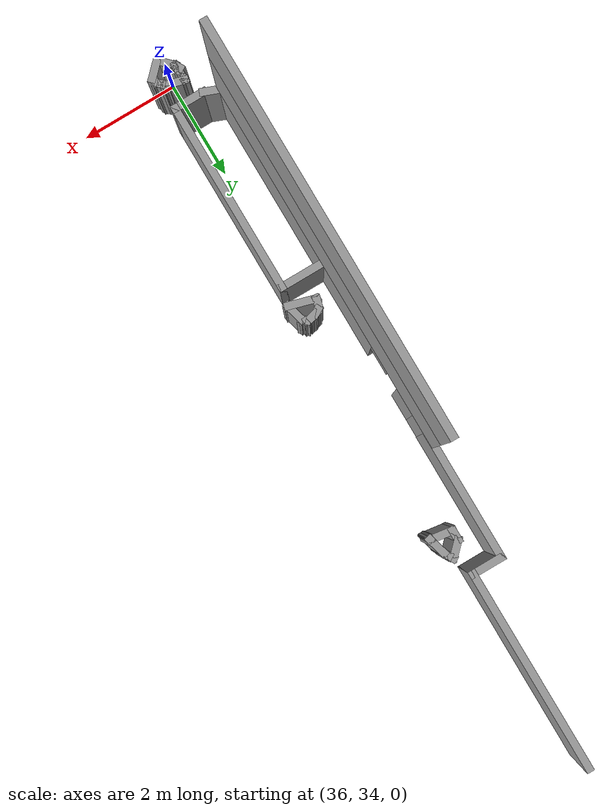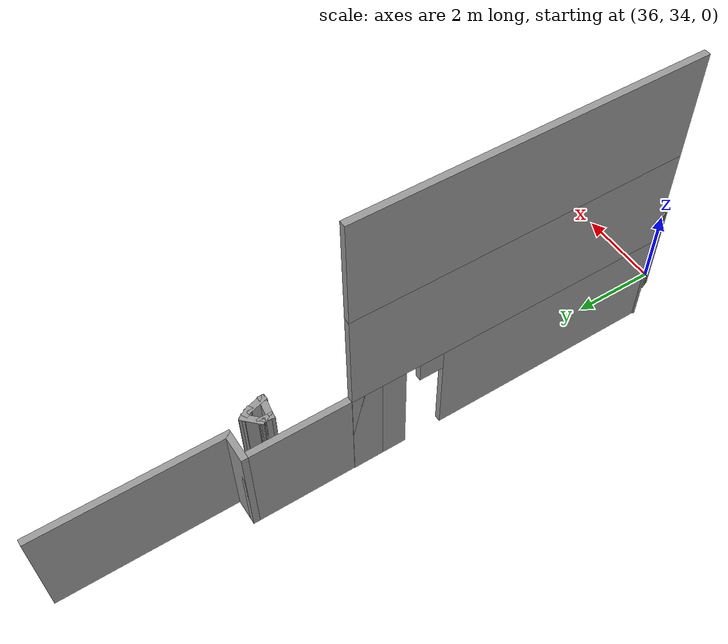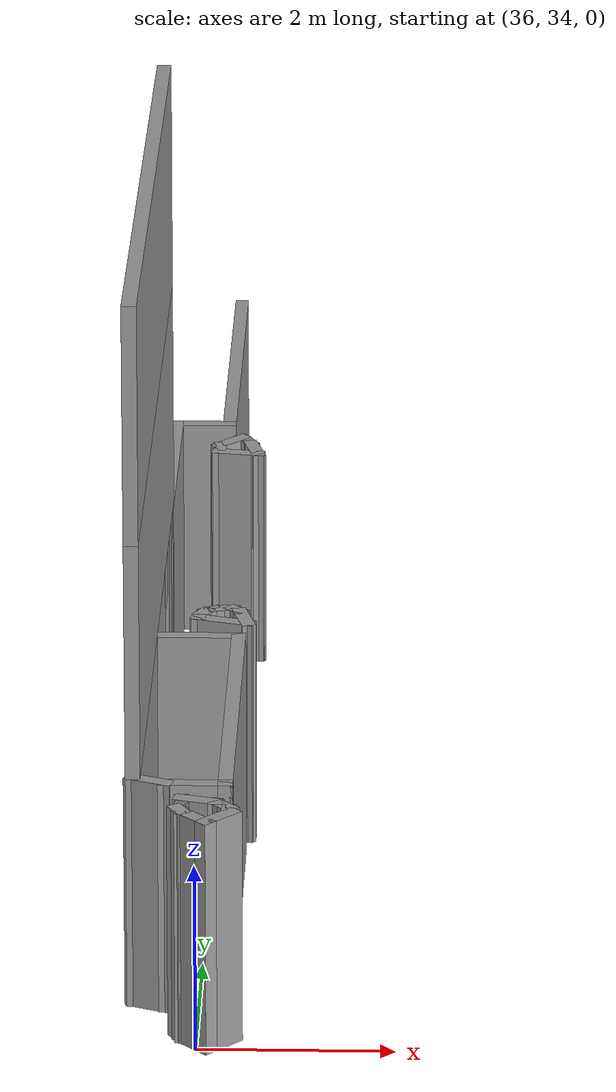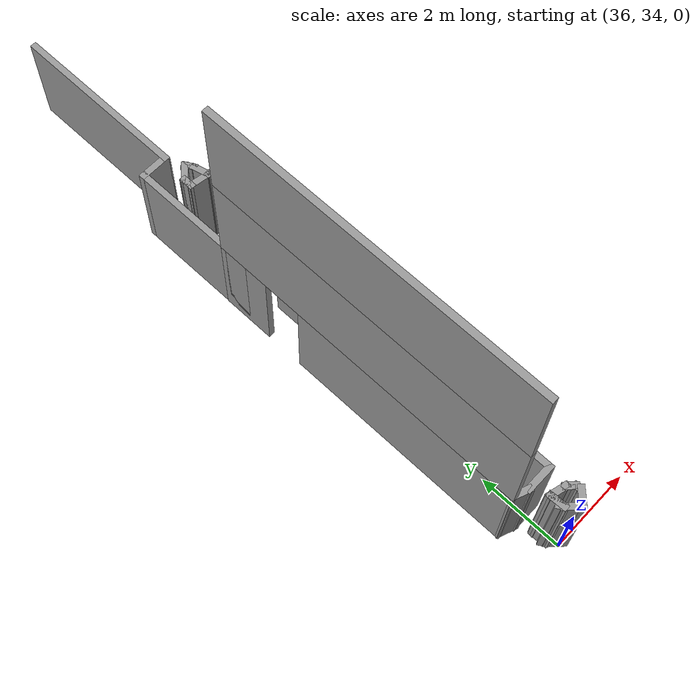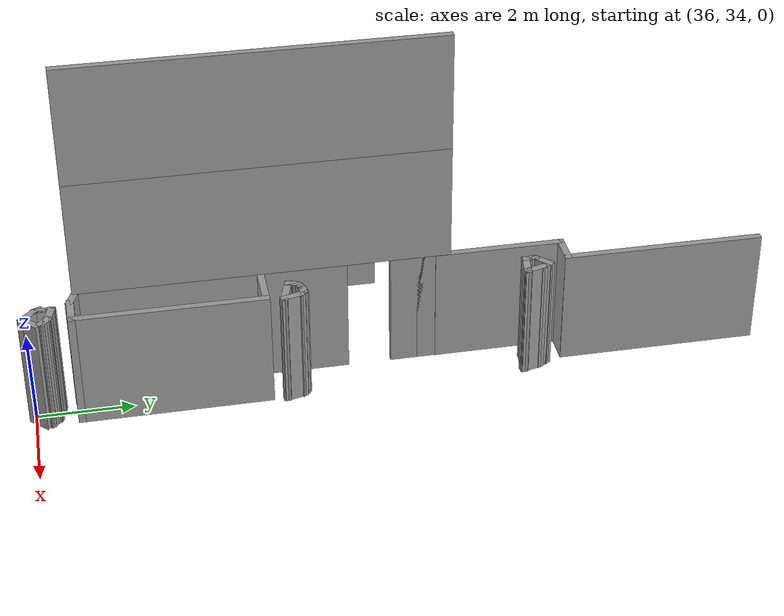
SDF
<sdf version="1.7">
 <model name="mapagazebo">
  <pose>-4.67869 9.01252 0 0 -0 0</pose>
  <link name="Wall_1241">
   <collision name="Wall_1241_Collision">
    <geometry><box><size>7.75 0.15 2.5</size></box></geometry>
    <pose>0 0 1.25 0 -0 0</pose>
   </collision>
   <visual name="Wall_1241_Visual">
    <pose>0 0 1.25 0 -0 0</pose>
    <geometry><box><size>7.75 0.15 2.5</size></box></geometry>
    <material>
     <script><uri>file://media/materials/scripts/gazebo.material</uri><name>Gazebo/Grey</name></script>
     <ambient>1 1 1 1</ambient>
    </material>
    <meta><layer>1</layer></meta>
   </visual>
   <pose>40.0249 29.827 2.5 0 -0 1.5708</pose>
  </link>
  <link name="Wall_1865">
   <collision name="Wall_1865_Collision">
    <geometry><box><size>7.75 0.15 2.5</size></box></geometry>
    <pose>0 0 1.25 0 -0 0</pose>
   </collision>
   <visual name="Wall_1865_Visual">
    <pose>0 0 1.25 0 -0 0</pose>
    <geometry><box><size>7.75 0.15 2.5</size></box></geometry>
    <material>
     <script><uri>file://media/materials/scripts/gazebo.material</uri><name>Gazebo/Grey</name></script>
     <ambient>1 1 1 1</ambient>
    </material>
    <meta><layer>2</layer></meta>
   </visual>
   <pose>40.0249 29.827 5 0 -0 1.5708</pose>
  </link>
  <link name="Wall_2074">
   <collision name="Wall_2074_Collision">
    <geometry><box><size>4.25 0.15 2.5</size></box></geometry>
    <pose>0 0 1.25 0 -0 0</pose>
   </collision>
   <visual name="Wall_2074_Visual">
    <pose>0 0 1.25 0 -0 0</pose>
    <geometry><box><size>4.25 0.15 2.5</size></box></geometry>
    <material>
     <script><uri>file://media/materials/scripts/gazebo.material</uri><name>Gazebo/Grey</name></script>
     <ambient>1 1 1 1</ambient>
    </material>
    <meta><layer>0</layer></meta>
   </visual>
   <pose>40.6328 38.1103 0 0 -0 -1.5708</pose>
  </link>
  <link name="Wall_2076">
   <collision name="Wall_2076_Collision">
    <geometry><box><size>0.75 0.15 2.5</size></box></geometry>
    <pose>0 0 1.25 0 -0 0</pose>
   </collision>
   <visual name="Wall_2076_Visual">
    <pose>0 0 1.25 0 -0 0</pose>
    <geometry><box><size>0.75 0.15 2.5</size></box></geometry>
    <material>
     <script><uri>file://media/materials/scripts/gazebo.material</uri><name>Gazebo/Grey</name></script>
     <ambient>1 1 1 1</ambient>
    </material>
    <meta><layer>0</layer></meta>
   </visual>
   <pose>40.3327 36.0603 0 0 -0 3.14159</pose>
  </link>
  <link name="Wall_2077">
   <collision name="Wall_2077_Collision">
    <geometry><box><size>2.75 0.15 2.5</size></box></geometry>
    <pose>0 0 1.25 0 -0 0</pose>
   </collision>
   <visual name="Wall_2077_Visual">
    <pose>0 0 1.25 0 -0 0</pose>
    <geometry><box><size>2.75 0.15 2.5</size></box></geometry>
    <material>
     <script><uri>file://media/materials/scripts/gazebo.material</uri><name>Gazebo/Grey</name></script>
     <ambient>1 1 1 1</ambient>
    </material>
    <meta><layer>0</layer></meta>
   </visual>
   <pose>40.0328 34.7603 0 0 -0 -1.5708</pose>
  </link>
  <link name="Wall_2096">
   <collision name="Wall_2096_Collision">
    <geometry><box><size>1 0.15 2.5</size></box></geometry>
    <pose>0 0 1.25 0 -0 0</pose>
   </collision>
   <visual name="Wall_2096_Visual">
    <pose>0 0 1.25 0 -0 0</pose>
    <geometry><box><size>1 0.15 2.5</size></box></geometry>
    <material>
     <script><uri>file://media/materials/scripts/gazebo.material</uri><name>Gazebo/Grey</name></script>
     <ambient>1 1 1 1</ambient>
    </material>
    <meta><layer>0</layer></meta>
   </visual>
   <pose>40.5263 29.749 0 0 -0 0</pose>
  </link>
  <link name="Wall_2097">
   <collision name="Wall_2097_Collision">
    <geometry><box><size>4 0.15 2.5</size></box></geometry>
    <pose>0 0 1.25 0 -0 0</pose>
   </collision>
   <visual name="Wall_2097_Visual">
    <pose>0 0 1.25 0 -0 0</pose>
    <geometry><box><size>4 0.15 2.5</size></box></geometry>
    <material>
     <script><uri>file://media/materials/scripts/gazebo.material</uri><name>Gazebo/Grey</name></script>
     <ambient>1 1 1 1</ambient>
    </material>
    <meta><layer>0</layer></meta>
   </visual>
   <pose>40.9513 27.824 0 0 -0 -1.5708</pose>
  </link>
  <link name="Wall_2101">
   <collision name="Wall_2101_Collision">
    <geometry><box><size>0.75 0.15 2.5</size></box></geometry>
    <pose>0 0 1.25 0 -0 0</pose>
   </collision>
   <visual name="Wall_2101_Visual">
    <pose>0 0 1.25 0 -0 0</pose>
    <geometry><box><size>0.75 0.15 2.5</size></box></geometry>
    <material>
     <script><uri>file://media/materials/scripts/gazebo.material</uri><name>Gazebo/Grey</name></script>
     <ambient>1 1 1 1</ambient>
    </material>
    <meta><layer>0</layer></meta>
   </visual>
   <pose>40.6513 25.899 0 0 -0 3.14159</pose>
  </link>
  <link name="Wall_2103">
   <collision name="Wall_2103_Collision">
    <geometry><box><size>0.500608 0.15 2.5</size></box></geometry>
    <pose>0 0 1.25 0 -0 0</pose>
   </collision>
   <visual name="Wall_2103_Visual">
    <pose>0 0 1.25 0 -0 0</pose>
    <geometry><box><size>0.500608 0.15 2.5</size></box></geometry>
    <material>
     <script><uri>file://media/materials/scripts/gazebo.material</uri><name>Gazebo/Grey</name></script>
     <ambient>1 1 1 1</ambient>
    </material>
    <meta><layer>0</layer></meta>
   </visual>
   <pose>40.1881 25.963 0 0 -0 -0.373602</pose>
  </link>
  <link name="Wall_2109">
   <collision name="Wall_2109_Collision">
    <geometry><box><size>0.25 0.15 2.5</size></box></geometry>
    <pose>0 0 1.25 0 -0 0</pose>
   </collision>
   <visual name="Wall_2109_Visual">
    <pose>0 0 1.25 0 -0 0</pose>
    <geometry><box><size>0.25 0.15 2.5</size></box></geometry>
    <material>
     <script><uri>file://media/materials/scripts/gazebo.material</uri><name>Gazebo/Grey</name></script>
     <ambient>1 1 1 1</ambient>
    </material>
    <meta><layer>0</layer></meta>
   </visual>
   <pose>40.5235 30.3024 0 0 -0 1.309</pose>
  </link>
  <link name="Wall_2110">
   <collision name="Wall_2110_Collision">
    <geometry><box><size>0.25 0.15 2.5</size></box></geometry>
    <pose>0 0 1.25 0 -0 0</pose>
   </collision>
   <visual name="Wall_2110_Visual">
    <pose>0 0 1.25 0 -0 0</pose>
    <geometry><box><size>0.25 0.15 2.5</size></box></geometry>
    <material>
     <script><uri>file://media/materials/scripts/gazebo.material</uri><name>Gazebo/Grey</name></script>
     <ambient>1 1 1 1</ambient>
    </material>
    <meta><layer>0</layer></meta>
   </visual>
   <pose>40.5614 30.394 0 0 -0 1.0472</pose>
  </link>
  <link name="Wall_2111">
   <collision name="Wall_2111_Collision">
    <geometry><box><size>0.25 0.15 2.5</size></box></geometry>
    <pose>0 0 1.25 0 -0 0</pose>
   </collision>
   <visual name="Wall_2111_Visual">
    <pose>0 0 1.25 0 -0 0</pose>
    <geometry><box><size>0.25 0.15 2.5</size></box></geometry>
    <material>
     <script><uri>file://media/materials/scripts/gazebo.material</uri><name>Gazebo/Grey</name></script>
     <ambient>1 1 1 1</ambient>
    </material>
    <meta><layer>0</layer></meta>
   </visual>
   <pose>40.6297 30.4623 0 0 -0 0.523599</pose>
  </link>
  <link name="Wall_2112">
   <collision name="Wall_2112_Collision">
    <geometry><box><size>0.25 0.15 2.5</size></box></geometry>
    <pose>0 0 1.25 0 -0 0</pose>
   </collision>
   <visual name="Wall_2112_Visual">
    <pose>0 0 1.25 0 -0 0</pose>
    <geometry><box><size>0.25 0.15 2.5</size></box></geometry>
    <material>
     <script><uri>file://media/materials/scripts/gazebo.material</uri><name>Gazebo/Grey</name></script>
     <ambient>1 1 1 1</ambient>
    </material>
    <meta><layer>0</layer></meta>
   </visual>
   <pose>40.7213 30.5002 0 0 -0 0.261799</pose>
  </link>
  <link name="Wall_2113">
   <collision name="Wall_2113_Collision">
    <geometry><box><size>0.25 0.15 2.5</size></box></geometry>
    <pose>0 0 1.25 0 -0 0</pose>
   </collision>
   <visual name="Wall_2113_Visual">
    <pose>0 0 1.25 0 -0 0</pose>
    <geometry><box><size>0.25 0.15 2.5</size></box></geometry>
    <material>
     <script><uri>file://media/materials/scripts/gazebo.material</uri><name>Gazebo/Grey</name></script>
     <ambient>1 1 1 1</ambient>
    </material>
    <meta><layer>0</layer></meta>
   </visual>
   <pose>40.8196 30.5132 0 0 -0 0</pose>
  </link>
  <link name="Wall_2114">
   <collision name="Wall_2114_Collision">
    <geometry><box><size>0.25 0.15 2.5</size></box></geometry>
    <pose>0 0 1.25 0 -0 0</pose>
   </collision>
   <visual name="Wall_2114_Visual">
    <pose>0 0 1.25 0 -0 0</pose>
    <geometry><box><size>0.25 0.15 2.5</size></box></geometry>
    <material>
     <script><uri>file://media/materials/scripts/gazebo.material</uri><name>Gazebo/Grey</name></script>
     <ambient>1 1 1 1</ambient>
    </material>
    <meta><layer>0</layer></meta>
   </visual>
   <pose>40.905 30.4778 0 0 -0 -0.785398</pose>
  </link>
  <link name="Wall_2115">
   <collision name="Wall_2115_Collision">
    <geometry><box><size>0.5 0.15 2.5</size></box></geometry>
    <pose>0 0 1.25 0 -0 0</pose>
   </collision>
   <visual name="Wall_2115_Visual">
    <pose>0 0 1.25 0 -0 0</pose>
    <geometry><box><size>0.5 0.15 2.5</size></box></geometry>
    <material>
     <script><uri>file://media/materials/scripts/gazebo.material</uri><name>Gazebo/Grey</name></script>
     <ambient>1 1 1 1</ambient>
    </material>
    <meta><layer>0</layer></meta>
   </visual>
   <pose>40.9856 30.2734 0 0 -0 -1.309</pose>
  </link>
  <link name="Wall_2117">
   <collision name="Wall_2117_Collision">
    <geometry><box><size>0.691481 0.15 2.5</size></box></geometry>
    <pose>0 0 1.25 0 -0 0</pose>
   </collision>
   <visual name="Wall_2117_Visual">
    <pose>0 0 1.25 0 -0 0</pose>
    <geometry><box><size>0.691481 0.15 2.5</size></box></geometry>
    <material>
     <script><uri>file://media/materials/scripts/gazebo.material</uri><name>Gazebo/Grey</name></script>
     <ambient>1 1 1 1</ambient>
    </material>
    <meta><layer>0</layer></meta>
   </visual>
   <pose>40.7707 30.1793 0 0 -0 2.86146</pose>
  </link>
  <link name="Wall_2118">
   <collision name="Wall_2118_Collision">
    <geometry><box><size>0.15 0.15 2.5</size></box></geometry>
    <pose>0 0 1.25 0 -0 0</pose>
   </collision>
   <visual name="Wall_2118_Visual">
    <pose>0 0 1.25 0 -0 0</pose>
    <geometry><box><size>0.15 0.15 2.5</size></box></geometry>
    <material>
     <script><uri>file://media/materials/scripts/gazebo.material</uri><name>Gazebo/Grey</name></script>
     <ambient>1 1 1 1</ambient>
    </material>
    <meta><layer>0</layer></meta>
   </visual>
   <pose>40.5106 30.2541 0 0 -0 0</pose>
  </link>
  <link name="Wall_2129">
   <collision name="Wall_2129_Collision">
    <geometry><box><size>0.25 0.15 2.5</size></box></geometry>
    <pose>0 0 1.25 0 -0 0</pose>
   </collision>
   <visual name="Wall_2129_Visual">
    <pose>0 0 1.25 0 -0 0</pose>
    <geometry><box><size>0.25 0.15 2.5</size></box></geometry>
    <material>
     <script><uri>file://media/materials/scripts/gazebo.material</uri><name>Gazebo/Grey</name></script>
     <ambient>1 1 1 1</ambient>
    </material>
    <meta><layer>0</layer></meta>
   </visual>
   <pose>40.546 35.2337 0 0 -0 1.5708</pose>
  </link>
  <link name="Wall_2130">
   <collision name="Wall_2130_Collision">
    <geometry><box><size>0.25 0.15 2.5</size></box></geometry>
    <pose>0 0 1.25 0 -0 0</pose>
   </collision>
   <visual name="Wall_2130_Visual">
    <pose>0 0 1.25 0 -0 0</pose>
    <geometry><box><size>0.25 0.15 2.5</size></box></geometry>
    <material>
     <script><uri>file://media/materials/scripts/gazebo.material</uri><name>Gazebo/Grey</name></script>
     <ambient>1 1 1 1</ambient>
    </material>
    <meta><layer>0</layer></meta>
   </visual>
   <pose>40.546 35.3337 0 0 -0 1.5708</pose>
  </link>
  <link name="Wall_2131">
   <collision name="Wall_2131_Collision">
    <geometry><box><size>0.15 0.15 2.5</size></box></geometry>
    <pose>0 0 1.25 0 -0 0</pose>
   </collision>
   <visual name="Wall_2131_Visual">
    <pose>0 0 1.25 0 -0 0</pose>
    <geometry><box><size>0.15 0.15 2.5</size></box></geometry>
    <material>
     <script><uri>file://media/materials/scripts/gazebo.material</uri><name>Gazebo/Grey</name></script>
     <ambient>1 1 1 1</ambient>
    </material>
    <meta><layer>0</layer></meta>
   </visual>
   <pose>40.546 35.3837 0 0 -0 0</pose>
  </link>
  <link name="Wall_2132">
   <collision name="Wall_2132_Collision">
    <geometry><box><size>0.5 0.15 2.5</size></box></geometry>
    <pose>0 0 1.25 0 -0 0</pose>
   </collision>
   <visual name="Wall_2132_Visual">
    <pose>0 0 1.25 0 -0 0</pose>
    <geometry><box><size>0.5 0.15 2.5</size></box></geometry>
    <material>
     <script><uri>file://media/materials/scripts/gazebo.material</uri><name>Gazebo/Grey</name></script>
     <ambient>1 1 1 1</ambient>
    </material>
    <meta><layer>0</layer></meta>
   </visual>
   <pose>40.6698 35.5074 0 0 -0 0.785398</pose>
  </link>
  <link name="Wall_2133">
   <collision name="Wall_2133_Collision">
    <geometry><box><size>0.25 0.15 2.5</size></box></geometry>
    <pose>0 0 1.25 0 -0 0</pose>
   </collision>
   <visual name="Wall_2133_Visual">
    <pose>0 0 1.25 0 -0 0</pose>
    <geometry><box><size>0.25 0.15 2.5</size></box></geometry>
    <material>
     <script><uri>file://media/materials/scripts/gazebo.material</uri><name>Gazebo/Grey</name></script>
     <ambient>1 1 1 1</ambient>
    </material>
    <meta><layer>0</layer></meta>
   </visual>
   <pose>40.8185 35.5879 0 0 -0 -1.0472</pose>
  </link>
  <link name="Wall_2134">
   <collision name="Wall_2134_Collision">
    <geometry><box><size>0.25 0.15 2.5</size></box></geometry>
    <pose>0 0 1.25 0 -0 0</pose>
   </collision>
   <visual name="Wall_2134_Visual">
    <pose>0 0 1.25 0 -0 0</pose>
    <geometry><box><size>0.25 0.15 2.5</size></box></geometry>
    <material>
     <script><uri>file://media/materials/scripts/gazebo.material</uri><name>Gazebo/Grey</name></script>
     <ambient>1 1 1 1</ambient>
    </material>
    <meta><layer>0</layer></meta>
   </visual>
   <pose>40.8685 35.5013 0 0 -0 -1.0472</pose>
  </link>
  <link name="Wall_2135">
   <collision name="Wall_2135_Collision">
    <geometry><box><size>0.5 0.15 2.5</size></box></geometry>
    <pose>0 0 1.25 0 -0 0</pose>
   </collision>
   <visual name="Wall_2135_Visual">
    <pose>0 0 1.25 0 -0 0</pose>
    <geometry><box><size>0.5 0.15 2.5</size></box></geometry>
    <material>
     <script><uri>file://media/materials/scripts/gazebo.material</uri><name>Gazebo/Grey</name></script>
     <ambient>1 1 1 1</ambient>
    </material>
    <meta><layer>0</layer></meta>
   </visual>
   <pose>40.9388 35.2889 0 0 -0 -1.309</pose>
  </link>
  <link name="Wall_2136">
   <collision name="Wall_2136_Collision">
    <geometry><box><size>0.15 0.15 2.5</size></box></geometry>
    <pose>0 0 1.25 0 -0 0</pose>
   </collision>
   <visual name="Wall_2136_Visual">
    <pose>0 0 1.25 0 -0 0</pose>
    <geometry><box><size>0.15 0.15 2.5</size></box></geometry>
    <material>
     <script><uri>file://media/materials/scripts/gazebo.material</uri><name>Gazebo/Grey</name></script>
     <ambient>1 1 1 1</ambient>
    </material>
    <meta><layer>0</layer></meta>
   </visual>
   <pose>40.9841 35.1199 0 0 -0 0</pose>
  </link>
  <link name="Wall_2137">
   <collision name="Wall_2137_Collision">
    <geometry><box><size>0.592694 0.15 2.5</size></box></geometry>
    <pose>0 0 1.25 0 -0 0</pose>
   </collision>
   <visual name="Wall_2137_Visual">
    <pose>0 0 1.25 0 -0 0</pose>
    <geometry><box><size>0.592694 0.15 2.5</size></box></geometry>
    <material>
     <script><uri>file://media/materials/scripts/gazebo.material</uri><name>Gazebo/Grey</name></script>
     <ambient>1 1 1 1</ambient>
    </material>
    <meta><layer>0</layer></meta>
   </visual>
   <pose>40.7651 35.1518 0 0 -0 2.99699</pose>
  </link>
  <link name="Wall_2138">
   <collision name="Wall_2138_Collision">
    <geometry><box><size>0.15 0.15 2.5</size></box></geometry>
    <pose>0 0 1.25 0 -0 0</pose>
   </collision>
   <visual name="Wall_2138_Visual">
    <pose>0 0 1.25 0 -0 0</pose>
    <geometry><box><size>0.15 0.15 2.5</size></box></geometry>
    <material>
     <script><uri>file://media/materials/scripts/gazebo.material</uri><name>Gazebo/Grey</name></script>
     <ambient>1 1 1 1</ambient>
    </material>
    <meta><layer>0</layer></meta>
   </visual>
   <pose>40.546 35.1837 0 0 -0 0</pose>
  </link>
  <link name="Wall_2149">
   <collision name="Wall_2149_Collision">
    <geometry><box><size>0.25 0.15 2.5</size></box></geometry>
    <pose>0 0 1.25 0 -0 0</pose>
   </collision>
   <visual name="Wall_2149_Visual">
    <pose>0 0 1.25 0 -0 0</pose>
    <geometry><box><size>0.25 0.15 2.5</size></box></geometry>
    <material>
     <script><uri>file://media/materials/scripts/gazebo.material</uri><name>Gazebo/Grey</name></script>
     <ambient>1 1 1 1</ambient>
    </material>
    <meta><layer>0</layer></meta>
   </visual>
   <pose>40.5169 25.2497 0 0 -0 -1.0472</pose>
  </link>
  <link name="Wall_2150">
   <collision name="Wall_2150_Collision">
    <geometry><box><size>0.5 0.15 2.5</size></box></geometry>
    <pose>0 0 1.25 0 -0 0</pose>
   </collision>
   <visual name="Wall_2150_Visual">
    <pose>0 0 1.25 0 -0 0</pose>
    <geometry><box><size>0.5 0.15 2.5</size></box></geometry>
    <material>
     <script><uri>file://media/materials/scripts/gazebo.material</uri><name>Gazebo/Grey</name></script>
     <ambient>1 1 1 1</ambient>
    </material>
    <meta><layer>0</layer></meta>
   </visual>
   <pose>40.6657 25.0827 0 0 -0 -0.785398</pose>
  </link>
  <link name="Wall_2152">
   <collision name="Wall_2152_Collision">
    <geometry><box><size>0.5 0.15 2.5</size></box></geometry>
    <pose>0 0 1.25 0 -0 0</pose>
   </collision>
   <visual name="Wall_2152_Visual">
    <pose>0 0 1.25 0 -0 0</pose>
    <geometry><box><size>0.5 0.15 2.5</size></box></geometry>
    <material>
     <script><uri>file://media/materials/scripts/gazebo.material</uri><name>Gazebo/Grey</name></script>
     <ambient>1 1 1 1</ambient>
    </material>
    <meta><layer>0</layer></meta>
   </visual>
   <pose>40.9131 25.0827 0 0 -0 0.785398</pose>
  </link>
  <link name="Wall_2154">
   <collision name="Wall_2154_Collision">
    <geometry><box><size>0.15 0.15 2.5</size></box></geometry>
    <pose>0 0 1.25 0 -0 0</pose>
   </collision>
   <visual name="Wall_2154_Visual">
    <pose>0 0 1.25 0 -0 0</pose>
    <geometry><box><size>0.15 0.15 2.5</size></box></geometry>
    <material>
     <script><uri>file://media/materials/scripts/gazebo.material</uri><name>Gazebo/Grey</name></script>
     <ambient>1 1 1 1</ambient>
    </material>
    <meta><layer>0</layer></meta>
   </visual>
   <pose>41.011 25.303 0 0 -0 0</pose>
  </link>
  <link name="Wall_2155">
   <collision name="Wall_2155_Collision">
    <geometry><box><size>0.25 0.15 2.5</size></box></geometry>
    <pose>0 0 1.25 0 -0 0</pose>
   </collision>
   <visual name="Wall_2155_Visual">
    <pose>0 0 1.25 0 -0 0</pose>
    <geometry><box><size>0.25 0.15 2.5</size></box></geometry>
    <material>
     <script><uri>file://media/materials/scripts/gazebo.material</uri><name>Gazebo/Grey</name></script>
     <ambient>1 1 1 1</ambient>
    </material>
    <meta><layer>0</layer></meta>
   </visual>
   <pose>40.9757 25.3384 0 0 -0 2.35619</pose>
  </link>
  <link name="Wall_2156">
   <collision name="Wall_2156_Collision">
    <geometry><box><size>0.245918 0.15 2.5</size></box></geometry>
    <pose>0 0 1.25 0 -0 0</pose>
   </collision>
   <visual name="Wall_2156_Visual">
    <pose>0 0 1.25 0 -0 0</pose>
    <geometry><box><size>0.245918 0.15 2.5</size></box></geometry>
    <material>
     <script><uri>file://media/materials/scripts/gazebo.material</uri><name>Gazebo/Grey</name></script>
     <ambient>1 1 1 1</ambient>
    </material>
    <meta><layer>0</layer></meta>
   </visual>
   <pose>40.9049 25.4061 0 0 -0 2.39972</pose>
  </link>
  <link name="Wall_2157">
   <collision name="Wall_2157_Collision">
    <geometry><box><size>0.15 0.15 2.5</size></box></geometry>
    <pose>0 0 1.25 0 -0 0</pose>
   </collision>
   <visual name="Wall_2157_Visual">
    <pose>0 0 1.25 0 -0 0</pose>
    <geometry><box><size>0.15 0.15 2.5</size></box></geometry>
    <material>
     <script><uri>file://media/materials/scripts/gazebo.material</uri><name>Gazebo/Grey</name></script>
     <ambient>1 1 1 1</ambient>
    </material>
    <meta><layer>0</layer></meta>
   </visual>
   <pose>40.8696 25.4385 0 0 -0 0</pose>
  </link>
  <link name="Wall_2158">
   <collision name="Wall_2158_Collision">
    <geometry><box><size>0.5 0.15 2.5</size></box></geometry>
    <pose>0 0 1.25 0 -0 0</pose>
   </collision>
   <visual name="Wall_2158_Visual">
    <pose>0 0 1.25 0 -0 0</pose>
    <geometry><box><size>0.5 0.15 2.5</size></box></geometry>
    <material>
     <script><uri>file://media/materials/scripts/gazebo.material</uri><name>Gazebo/Grey</name></script>
     <ambient>1 1 1 1</ambient>
    </material>
    <meta><layer>0</layer></meta>
   </visual>
   <pose>40.7006 25.4868 0 0 -0 2.87979</pose>
  </link>
  <link name="Wall_2159">
   <collision name="Wall_2159_Collision">
    <geometry><box><size>0.472866 0.15 2.5</size></box></geometry>
    <pose>0 0 1.25 0 -0 0</pose>
   </collision>
   <visual name="Wall_2159_Visual">
    <pose>0 0 1.25 0 -0 0</pose>
    <geometry><box><size>0.472866 0.15 2.5</size></box></geometry>
    <material>
     <script><uri>file://media/materials/scripts/gazebo.material</uri><name>Gazebo/Grey</name></script>
     <ambient>1 1 1 1</ambient>
    </material>
    <meta><layer>0</layer></meta>
   </visual>
   <pose>40.5367 25.3678 0 0 -0 -1.53857</pose>
  </link>
  <link name="Wall_2160">
   <collision name="Wall_2160_Collision">
    <geometry><box><size>0.472866 0.15 2.5</size></box></geometry>
    <pose>0 0 1.25 0 -0 0</pose>
   </collision>
   <visual name="Wall_2160_Visual">
    <pose>0 0 1.25 0 -0 0</pose>
    <geometry><box><size>0.472866 0.15 2.5</size></box></geometry>
    <material>
     <script><uri>file://media/materials/scripts/gazebo.material</uri><name>Gazebo/Grey</name></script>
     <ambient>1 1 1 1</ambient>
    </material>
    <meta><layer>0</layer></meta>
   </visual>
   <pose>40.5367 25.3678 0 0 -0 1.60302</pose>
  </link>
  <link name="Wall_583">
   <pose>40.0249 29.827 0 0 -0 1.5708</pose>
   <visual name="Wall_583_Visual_0">
    <pose>-1.08444 0 1.25 0 -0 0</pose>
    <geometry><box><size>5.58112 0.15 2.5</size></box></geometry>
    <material>
     <script><uri>file://media/materials/scripts/gazebo.material</uri><name>Gazebo/Grey</name></script>
     <ambient>1 1 1 1</ambient>
    </material>
    <meta><layer>0</layer></meta>
   </visual>
   <collision name="Wall_583_Collision_0">
    <geometry><box><size>5.58112 0.15 2.5</size></box></geometry>
    <pose>-1.08444 0 1.25 0 -0 0</pose>
   </collision>
   <visual name="Wall_583_Visual_1">
    <pose>3.24056 0 1.25 0 -0 0</pose>
    <geometry><box><size>1.26888 0.15 2.5</size></box></geometry>
    <material>
     <script><uri>file://media/materials/scripts/gazebo.material</uri><name>Gazebo/Grey</name></script>
     <ambient>1 1 1 1</ambient>
    </material>
    <meta><layer>0</layer></meta>
   </visual>
   <collision name="Wall_583_Collision_1">
    <geometry><box><size>1.26888 0.15 2.5</size></box></geometry>
    <pose>3.24056 0 1.25 0 -0 0</pose>
   </collision>
   <visual name="Wall_583_Visual_2">
    <pose>3.5236 0 1.25 0 -0 0</pose>
    <geometry><box><size>0.702805 0.15 2.5</size></box></geometry>
    <material>
     <script><uri>file://media/materials/scripts/gazebo.material</uri><name>Gazebo/Grey</name></script>
     <ambient>1 1 1 1</ambient>
    </material>
    <meta><layer>0</layer></meta>
   </visual>
   <collision name="Wall_583_Collision_2">
    <geometry><box><size>0.702805 0.15 2.5</size></box></geometry>
    <pose>3.5236 0 1.25 0 -0 0</pose>
   </collision>
   <visual name="Wall_583_Visual_3">
    <pose>1.98916 0 2.25 0 -0 0</pose>
    <geometry><box><size>0.566074 0.15 0.5</size></box></geometry>
    <material>
     <script><uri>file://media/materials/scripts/gazebo.material</uri><name>Gazebo/Grey</name></script>
     <ambient>1 1 1 1</ambient>
    </material>
    <meta><layer>0</layer></meta>
   </visual>
   <collision name="Wall_583_Collision_3">
    <geometry><box><size>0.566074 0.15 0.5</size></box></geometry>
    <pose>1.98916 0 2.25 0 -0 0</pose>
   </collision>
  </link>
  <static>1</static>
 </model>
</sdf>
